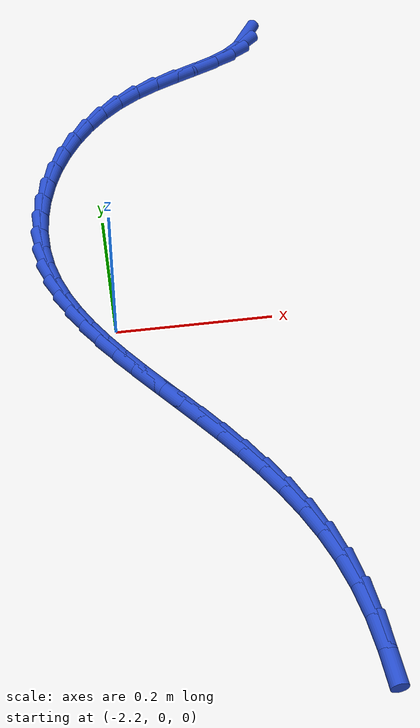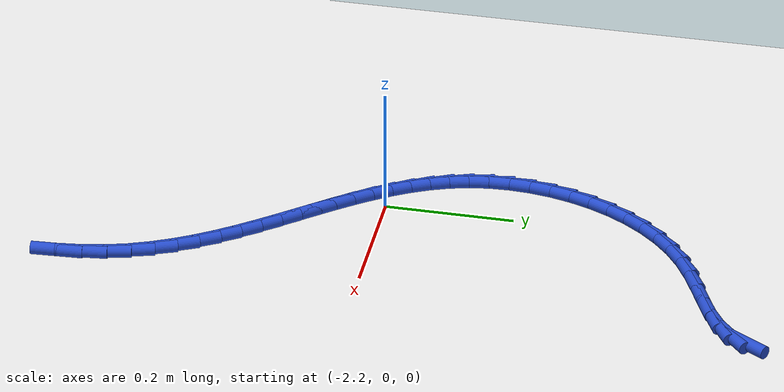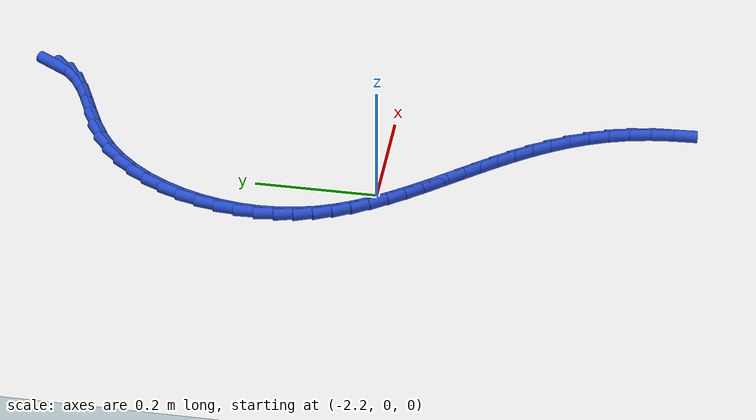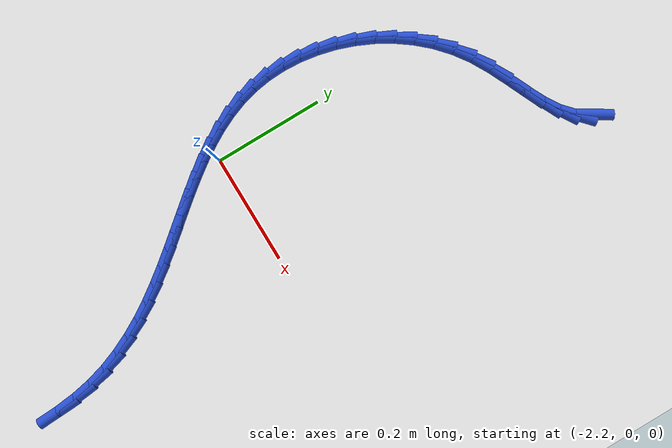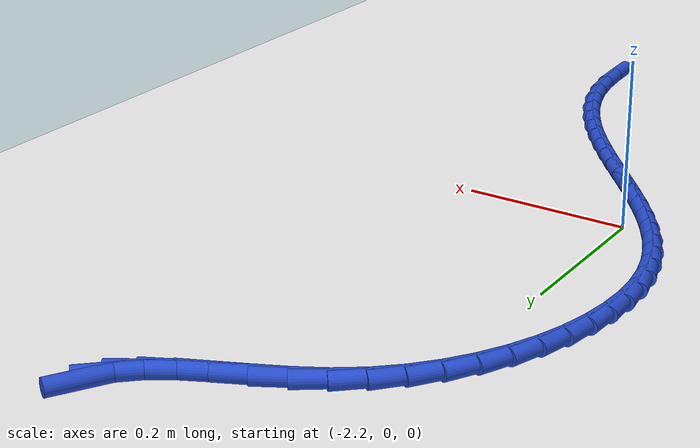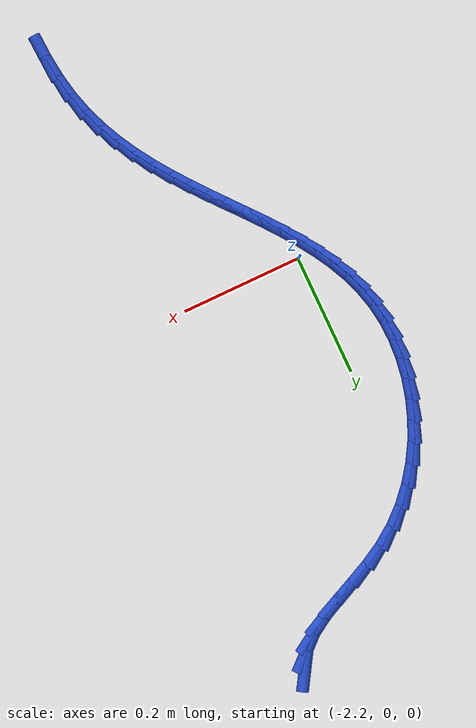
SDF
<sdf version="1.6">
 <world name="default">
  <model name="ground_plane">
   <static>1</static>
   <link name="link">
    <collision name="collision">
     <geometry><plane><normal>0 0 1</normal><size>100 100</size></plane></geometry>
     <surface><friction><ode><mu>100</mu><mu2>50</mu2></ode></friction></surface>
    </collision>
    <visual name="visual">
     <cast_shadows>0</cast_shadows>
     <geometry><plane><normal>0 0 1</normal><size>100 100</size></plane></geometry>
     <material>
      <script><uri>file://media/materials/scripts/gazebo.material</uri><name>Gazebo/WhiteGlow</name></script>
     </material>
    </visual>
   </link>
  </model>
  <model name="line">
   <link name="link_104">
    <pose>-1.933986360848739 0.5950151143576776 0.01 0 1.57 1.0204089941830774</pose>
    <collision name="collision">
     <geometry><cylinder><radius>0.01</radius><length>0.08</length></cylinder></geometry>
    </collision>
    <visual name="visual">
     <material>
      <script><name>Gazebo/Blue</name><uri>file://media/materials/scripts/gazebo.material</uri></script>
     </material>
     <geometry><cylinder><radius>0.01</radius><length>0.08</length></cylinder></geometry>
    </visual>
   </link>
   <link name="link_105">
    <pose>-1.948315817917407 0.571663479090471 0.01 0 1.57 0.7372485207078457</pose>
    <collision name="collision">
     <geometry><cylinder><radius>0.01</radius><length>0.08</length></cylinder></geometry>
    </collision>
    <visual name="visual">
     <material>
      <script><name>Gazebo/Blue</name><uri>file://media/materials/scripts/gazebo.material</uri></script>
     </material>
     <geometry><cylinder><radius>0.01</radius><length>0.08</length></cylinder></geometry>
    </visual>
   </link>
   <link name="link_106">
    <pose>-1.969731161140135 0.5522171334547257 0.01 0 1.57 0.5573784857715927</pose>
    <collision name="collision">
     <geometry><cylinder><radius>0.01</radius><length>0.08</length></cylinder></geometry>
    </collision>
    <visual name="visual">
     <material>
      <script><name>Gazebo/Blue</name><uri>file://media/materials/scripts/gazebo.material</uri></script>
     </material>
     <geometry><cylinder><radius>0.01</radius><length>0.08</length></cylinder></geometry>
    </visual>
   </link>
   <link name="link_107">
    <pose>-1.9965833276831084 0.5354800819865977 0.01 0 1.57 0.4611324191565718</pose>
    <collision name="collision">
     <geometry><cylinder><radius>0.01</radius><length>0.08</length></cylinder></geometry>
    </collision>
    <visual name="visual">
     <material>
      <script><name>Gazebo/Blue</name><uri>file://media/materials/scripts/gazebo.material</uri></script>
     </material>
     <geometry><cylinder><radius>0.01</radius><length>0.08</length></cylinder></geometry>
    </visual>
   </link>
   <link name="link_108">
    <pose>-2.027223254712512 0.5202563292222425 0.01 0 1.57 0.42680635286722945</pose>
    <collision name="collision">
     <geometry><cylinder><radius>0.01</radius><length>0.08</length></cylinder></geometry>
    </collision>
    <visual name="visual">
     <material>
      <script><name>Gazebo/Blue</name><uri>file://media/materials/scripts/gazebo.material</uri></script>
     </material>
     <geometry><cylinder><radius>0.01</radius><length>0.08</length></cylinder></geometry>
    </visual>
   </link>
   <link name="link_109">
    <pose>-2.060001879394531 0.5053498796978171 0.01 0 1.57 0.4430244187444117</pose>
    <collision name="collision">
     <geometry><cylinder><radius>0.01</radius><length>0.08</length></cylinder></geometry>
    </collision>
    <visual name="visual">
     <material>
      <script><name>Gazebo/Blue</name><uri>file://media/materials/scripts/gazebo.material</uri></script>
     </material>
     <geometry><cylinder><radius>0.01</radius><length>0.08</length></cylinder></geometry>
    </visual>
   </link>
   <link name="link_110">
    <pose>-2.0932701388953485 0.48956473794947625 0.01 0 1.57 0.5076121667118759</pose>
    <collision name="collision">
     <geometry><cylinder><radius>0.01</radius><length>0.08</length></cylinder></geometry>
    </collision>
    <visual name="visual">
     <material>
      <script><name>Gazebo/Blue</name><uri>file://media/materials/scripts/gazebo.material</uri></script>
     </material>
     <geometry><cylinder><radius>0.01</radius><length>0.08</length></cylinder></geometry>
    </visual>
   </link>
   <link name="link_111">
    <pose>-2.12537897038115 0.4717049085133764 0.01 0 1.57 0.61567512951048</pose>
    <collision name="collision">
     <geometry><cylinder><radius>0.01</radius><length>0.08</length></cylinder></geometry>
    </collision>
    <visual name="visual">
     <material>
      <script><name>Gazebo/Blue</name><uri>file://media/materials/scripts/gazebo.material</uri></script>
     </material>
     <geometry><cylinder><radius>0.01</radius><length>0.08</length></cylinder></geometry>
    </visual>
   </link>
   <link name="link_112">
    <pose>-2.1549167564538614 0.450809880034942 0.01 0 1.57 0.7299988390814665</pose>
    <collision name="collision">
     <geometry><cylinder><radius>0.01</radius><length>0.08</length></cylinder></geometry>
    </collision>
    <visual name="visual">
     <material>
      <script><name>Gazebo/Blue</name><uri>file://media/materials/scripts/gazebo.material</uri></script>
     </material>
     <geometry><cylinder><radius>0.01</radius><length>0.08</length></cylinder></geometry>
    </visual>
   </link>
   <link name="link_113">
    <pose>-2.181543121774307 0.42698153463650906 0.01 0 1.57 0.8389829593698369</pose>
    <collision name="collision">
     <geometry><cylinder><radius>0.01</radius><length>0.08</length></cylinder></geometry>
    </collision>
    <visual name="visual">
     <material>
      <script><name>Gazebo/Blue</name><uri>file://media/materials/scripts/gazebo.material</uri></script>
     </material>
     <geometry><cylinder><radius>0.01</radius><length>0.08</length></cylinder></geometry>
    </visual>
   </link>
   <link name="link_114">
    <pose>-2.205219651989807 0.4006212211946037 0.01 0 1.57 0.9427434951780621</pose>
    <collision name="collision">
     <geometry><cylinder><radius>0.01</radius><length>0.08</length></cylinder></geometry>
    </collision>
    <visual name="visual">
     <material>
      <script><name>Gazebo/Blue</name><uri>file://media/materials/scripts/gazebo.material</uri></script>
     </material>
     <geometry><cylinder><radius>0.01</radius><length>0.08</length></cylinder></geometry>
    </visual>
   </link>
   <link name="link_115">
    <pose>-2.225907950027091 0.3721303057224294 0.01 0 1.57 1.0419014246201275</pose>
    <collision name="collision">
     <geometry><cylinder><radius>0.01</radius><length>0.08</length></cylinder></geometry>
    </collision>
    <visual name="visual">
     <material>
      <script><name>Gazebo/Blue</name><uri>file://media/materials/scripts/gazebo.material</uri></script>
     </material>
     <geometry><cylinder><radius>0.01</radius><length>0.08</length></cylinder></geometry>
    </visual>
   </link>
   <link name="link_116">
    <pose>-2.243569618812883 0.3419101542331905 0.01 0 1.57 1.1374477856881722</pose>
    <collision name="collision">
     <geometry><cylinder><radius>0.01</radius><length>0.08</length></cylinder></geometry>
    </collision>
    <visual name="visual">
     <material>
      <script><name>Gazebo/Blue</name><uri>file://media/materials/scripts/gazebo.material</uri></script>
     </material>
     <geometry><cylinder><radius>0.01</radius><length>0.08</length></cylinder></geometry>
    </visual>
   </link>
   <link name="link_117">
    <pose>-2.2581662612739124 0.3103621327400908 0.01 0 1.57 1.2306380950884885</pose>
    <collision name="collision">
     <geometry><cylinder><radius>0.01</radius><length>0.08</length></cylinder></geometry>
    </collision>
    <visual name="visual">
     <material>
      <script><name>Gazebo/Blue</name><uri>file://media/materials/scripts/gazebo.material</uri></script>
     </material>
     <geometry><cylinder><radius>0.01</radius><length>0.08</length></cylinder></geometry>
    </visual>
   </link>
   <link name="link_118">
    <pose>-2.2696594803369066 0.2778876072563341 0.01 0 1.57 1.3229253970348498</pose>
    <collision name="collision">
     <geometry><cylinder><radius>0.01</radius><length>0.08</length></cylinder></geometry>
    </collision>
    <visual name="visual">
     <material>
      <script><name>Gazebo/Blue</name><uri>file://media/materials/scripts/gazebo.material</uri></script>
     </material>
     <geometry><cylinder><radius>0.01</radius><length>0.08</length></cylinder></geometry>
    </visual>
   </link>
   <link name="link_119">
    <pose>-2.278010878928591 0.24488794379512363 0.01 0 1.57 1.4159279536954934</pose>
    <collision name="collision">
     <geometry><cylinder><radius>0.01</radius><length>0.08</length></cylinder></geometry>
    </collision>
    <visual name="visual">
     <material>
      <script><name>Gazebo/Blue</name><uri>file://media/materials/scripts/gazebo.material</uri></script>
     </material>
     <geometry><cylinder><radius>0.01</radius><length>0.08</length></cylinder></geometry>
    </visual>
   </link>
   <link name="link_120">
    <pose>-2.2831820599756947 0.21176450836966434 0.01 0 1.57 1.5114198221318789</pose>
    <collision name="collision">
     <geometry><cylinder><radius>0.01</radius><length>0.08</length></cylinder></geometry>
    </collision>
    <visual name="visual">
     <material>
      <script><name>Gazebo/Blue</name><uri>file://media/materials/scripts/gazebo.material</uri></script>
     </material>
     <geometry><cylinder><radius>0.01</radius><length>0.08</length></cylinder></geometry>
    </visual>
   </link>
   <link name="link_121">
    <pose>-2.2851346264049455 0.17891866699315967 0.01 0 1.57 -1.5302661025384967</pose>
    <collision name="collision">
     <geometry><cylinder><radius>0.01</radius><length>0.08</length></cylinder></geometry>
    </collision>
    <visual name="visual">
     <material>
      <script><name>Gazebo/Blue</name><uri>file://media/materials/scripts/gazebo.material</uri></script>
     </material>
     <geometry><cylinder><radius>0.01</radius><length>0.08</length></cylinder></geometry>
    </visual>
   </link>
   <link name="link_122">
    <pose>-2.2838301811430686 0.14675178567881322 0.01 0 1.57 -1.423973522729481</pose>
    <collision name="collision">
     <geometry><cylinder><radius>0.01</radius><length>0.08</length></cylinder></geometry>
    </collision>
    <visual name="visual">
     <material>
      <script><name>Gazebo/Blue</name><uri>file://media/materials/scripts/gazebo.material</uri></script>
     </material>
     <geometry><cylinder><radius>0.01</radius><length>0.08</length></cylinder></geometry>
    </visual>
   </link>
   <link name="link_123">
    <pose>-2.2792324206656382 0.11566209866932872 0.01 0 1.57 -1.3153129902416556</pose>
    <collision name="collision">
     <geometry><cylinder><radius>0.01</radius><length>0.08</length></cylinder></geometry>
    </collision>
    <visual name="visual">
     <material>
      <script><name>Gazebo/Blue</name><uri>file://media/materials/scripts/gazebo.material</uri></script>
     </material>
     <geometry><cylinder><radius>0.01</radius><length>0.08</length></cylinder></geometry>
    </visual>
   </link>
   <link name="link_124">
    <pose>-2.2714433877825746 0.08584088589175147 0.01 0 1.57 -1.2152062171179583</pose>
    <collision name="collision">
     <geometry><cylinder><radius>0.01</radius><length>0.08</length></cylinder></geometry>
    </collision>
    <visual name="visual">
     <material>
      <script><name>Gazebo/Blue</name><uri>file://media/materials/scripts/gazebo.material</uri></script>
     </material>
     <geometry><cylinder><radius>0.01</radius><length>0.08</length></cylinder></geometry>
    </visual>
   </link>
   <link name="link_125">
    <pose>-2.260787223134183 0.0571471878631375 0.01 0 1.57 -1.1272302960029512</pose>
    <collision name="collision">
     <geometry><cylinder><radius>0.01</radius><length>0.08</length></cylinder></geometry>
    </collision>
    <visual name="visual">
     <material>
      <script><name>Gazebo/Blue</name><uri>file://media/materials/scripts/gazebo.material</uri></script>
     </material>
     <geometry><cylinder><radius>0.01</radius><length>0.08</length></cylinder></geometry>
    </visual>
   </link>
   <link name="link_126">
    <pose>-2.247608096879492 0.029410082648997228 0.01 0 1.57 -1.0528510251509282</pose>
    <collision name="collision">
     <geometry><cylinder><radius>0.01</radius><length>0.08</length></cylinder></geometry>
    </collision>
    <visual name="visual">
     <material>
      <script><name>Gazebo/Blue</name><uri>file://media/materials/scripts/gazebo.material</uri></script>
     </material>
     <geometry><cylinder><radius>0.01</radius><length>0.08</length></cylinder></geometry>
    </visual>
   </link>
   <link name="link_127">
    <pose>-2.232250179177528 0.0024586483148387895 0.01 0 1.57 -0.9924565691094098</pose>
    <collision name="collision">
     <geometry><cylinder><radius>0.01</radius><length>0.08</length></cylinder></geometry>
    </collision>
    <visual name="visual">
     <material>
      <script><name>Gazebo/Blue</name><uri>file://media/materials/scripts/gazebo.material</uri></script>
     </material>
     <geometry><cylinder><radius>0.01</radius><length>0.08</length></cylinder></geometry>
    </visual>
   </link>
   <link name="link_128">
    <pose>-2.215057640187318 -0.02387803707382889 0.01 0 1.57 -0.9457532593281996</pose>
    <collision name="collision">
     <geometry><cylinder><radius>0.01</radius><length>0.08</length></cylinder></geometry>
    </collision>
    <visual name="visual">
     <material>
      <script><name>Gazebo/Blue</name><uri>file://media/materials/scripts/gazebo.material</uri></script>
     </material>
     <geometry><cylinder><radius>0.01</radius><length>0.08</length></cylinder></geometry>
    </visual>
   </link>
   <link name="link_129">
    <pose>-2.196374650067889 -0.049770895451496946 0.01 0 1.57 -0.9121252978465298</pose>
    <collision name="collision">
     <geometry><cylinder><radius>0.01</radius><length>0.08</length></cylinder></geometry>
    </collision>
    <visual name="visual">
     <material>
      <script><name>Gazebo/Blue</name><uri>file://media/materials/scripts/gazebo.material</uri></script>
     </material>
     <geometry><cylinder><radius>0.01</radius><length>0.08</length></cylinder></geometry>
    </visual>
   </link>
   <link name="link_130">
    <pose>-2.176545378978268 -0.07539084875265643 0.01 0 1.57 -0.8908914635336569</pose>
    <collision name="collision">
     <geometry><cylinder><radius>0.01</radius><length>0.08</length></cylinder></geometry>
    </collision>
    <visual name="visual">
     <material>
      <script><name>Gazebo/Blue</name><uri>file://media/materials/scripts/gazebo.material</uri></script>
     </material>
     <geometry><cylinder><radius>0.01</radius><length>0.08</length></cylinder></geometry>
    </visual>
   </link>
   <link name="link_131">
    <pose>-2.155913997077482 -0.10090881891179847 0.01 0 1.57 -0.8814587004226851</pose>
    <collision name="collision">
     <geometry><cylinder><radius>0.01</radius><length>0.08</length></cylinder></geometry>
    </collision>
    <visual name="visual">
     <material>
      <script><name>Gazebo/Blue</name><uri>file://media/materials/scripts/gazebo.material</uri></script>
     </material>
     <geometry><cylinder><radius>0.01</radius><length>0.08</length></cylinder></geometry>
    </visual>
   </link>
   <link name="link_132">
    <pose>-2.1348246745245576 -0.12649572786341476 0.01 0 1.57 -0.8833968676561554</pose>
    <collision name="collision">
     <geometry><cylinder><radius>0.01</radius><length>0.08</length></cylinder></geometry>
    </collision>
    <visual name="visual">
     <material>
      <script><name>Gazebo/Blue</name><uri>file://media/materials/scripts/gazebo.material</uri></script>
     </material>
     <geometry><cylinder><radius>0.01</radius><length>0.08</length></cylinder></geometry>
    </visual>
   </link>
   <link name="link_133">
    <pose>-2.113621581478523 -0.15232249754199512 0.01 0 1.57 -0.8964586905300691</pose>
    <collision name="collision">
     <geometry><cylinder><radius>0.01</radius><length>0.08</length></cylinder></geometry>
    </collision>
    <visual name="visual">
     <material>
      <script><name>Gazebo/Blue</name><uri>file://media/materials/scripts/gazebo.material</uri></script>
     </material>
     <geometry><cylinder><radius>0.01</radius><length>0.08</length></cylinder></geometry>
    </visual>
   </link>
   <link name="link_134">
    <pose>-2.092648888098404 -0.17856004988203128 0.01 0 1.57 -0.9205599129898491</pose>
    <collision name="collision">
     <geometry><cylinder><radius>0.01</radius><length>0.08</length></cylinder></geometry>
    </collision>
    <visual name="visual">
     <material>
      <script><name>Gazebo/Blue</name><uri>file://media/materials/scripts/gazebo.material</uri></script>
     </material>
     <geometry><cylinder><radius>0.01</radius><length>0.08</length></cylinder></geometry>
    </visual>
   </link>
   <link name="link_135">
    <pose>-2.072250764543228 -0.20537930681801428 0.01 0 1.57 -0.9557249343560363</pose>
    <collision name="collision">
     <geometry><cylinder><radius>0.01</radius><length>0.08</length></cylinder></geometry>
    </collision>
    <visual name="visual">
     <material>
      <script><name>Gazebo/Blue</name><uri>file://media/materials/scripts/gazebo.material</uri></script>
     </material>
     <geometry><cylinder><radius>0.01</radius><length>0.08</length></cylinder></geometry>
    </visual>
   </link>
   <link name="link_136">
    <pose>-2.0527713809720227 -0.23295119028443528 0.01 0 1.57 -1.001996235731911</pose>
    <collision name="collision">
     <geometry><cylinder><radius>0.01</radius><length>0.08</length></cylinder></geometry>
    </collision>
    <visual name="visual">
     <material>
      <script><name>Gazebo/Blue</name><uri>file://media/materials/scripts/gazebo.material</uri></script>
     </material>
     <geometry><cylinder><radius>0.01</radius><length>0.08</length></cylinder></geometry>
    </visual>
   </link>
   <link name="link_137">
    <pose>-2.034554907543814 -0.2614466222157853 0.01 0 1.57 -1.0593039770902997</pose>
    <collision name="collision">
     <geometry><cylinder><radius>0.01</radius><length>0.08</length></cylinder></geometry>
    </collision>
    <visual name="visual">
     <material>
      <script><name>Gazebo/Blue</name><uri>file://media/materials/scripts/gazebo.material</uri></script>
     </material>
     <geometry><cylinder><radius>0.01</radius><length>0.08</length></cylinder></geometry>
    </visual>
   </link>
   <link name="link_138">
    <pose>-2.0179455144176295 -0.29103652454655554 0.01 0 1.57 -1.1272983393159928</pose>
    <collision name="collision">
     <geometry><cylinder><radius>0.01</radius><length>0.08</length></cylinder></geometry>
    </collision>
    <visual name="visual">
     <material>
      <script><name>Gazebo/Blue</name><uri>file://media/materials/scripts/gazebo.material</uri></script>
     </material>
     <geometry><cylinder><radius>0.01</radius><length>0.08</length></cylinder></geometry>
    </visual>
   </link>
   <link name="link_139">
    <pose>-2.0032873717524966 -0.32189181921123705 0.01 0 1.57 -1.2051645413802978</pose>
    <collision name="collision">
     <geometry><cylinder><radius>0.01</radius><length>0.08</length></cylinder></geometry>
    </collision>
    <visual name="visual">
     <material>
      <script><name>Gazebo/Blue</name><uri>file://media/materials/scripts/gazebo.material</uri></script>
     </material>
     <geometry><cylinder><radius>0.01</radius><length>0.08</length></cylinder></geometry>
    </visual>
   </link>
   <link name="link_140">
    <pose>-1.990924649707441 -0.3541834281443217 0.01 0 1.57 -1.291467492861591</pose>
    <collision name="collision">
     <geometry><cylinder><radius>0.01</radius><length>0.08</length></cylinder></geometry>
    </collision>
    <visual name="visual">
     <material>
      <script><name>Gazebo/Blue</name><uri>file://media/materials/scripts/gazebo.material</uri></script>
     </material>
     <geometry><cylinder><radius>0.01</radius><length>0.08</length></cylinder></geometry>
    </visual>
   </link>
   <link name="link_141">
    <pose>-1.981201518441491 -0.38808227328029876 0.01 0 1.57 -1.3834678168301173</pose>
    <collision name="collision">
     <geometry><cylinder><radius>0.01</radius><length>0.08</length></cylinder></geometry>
    </collision>
    <visual name="visual">
     <material>
      <script><name>Gazebo/Blue</name><uri>file://media/materials/scripts/gazebo.material</uri></script>
     </material>
     <geometry><cylinder><radius>0.01</radius><length>0.08</length></cylinder></geometry>
    </visual>
   </link>
   <link name="link_142">
    <pose>-1.9744416208987996 -0.42374496673256884 0.01 0 1.57 -1.4645660519278514</pose>
    <collision name="collision">
     <geometry><cylinder><radius>0.01</radius><length>0.08</length></cylinder></geometry>
    </collision>
    <visual name="visual">
     <material>
      <script><name>Gazebo/Blue</name><uri>file://media/materials/scripts/gazebo.material</uri></script>
     </material>
     <geometry><cylinder><radius>0.01</radius><length>0.08</length></cylinder></geometry>
    </visual>
   </link>
   <link name="link_143">
    <pose>-1.9704710509290582 -0.46098127187885657 0.01 0 1.57 -1.522034329046391</pose>
    <collision name="collision">
     <geometry><cylinder><radius>0.01</radius><length>0.08</length></cylinder></geometry>
    </collision>
    <visual name="visual">
     <material>
      <script><name>Gazebo/Blue</name><uri>file://media/materials/scripts/gazebo.material</uri></script>
     </material>
     <geometry><cylinder><radius>0.01</radius><length>0.08</length></cylinder></geometry>
    </visual>
   </link>
  </model>
 </world>
</sdf>
